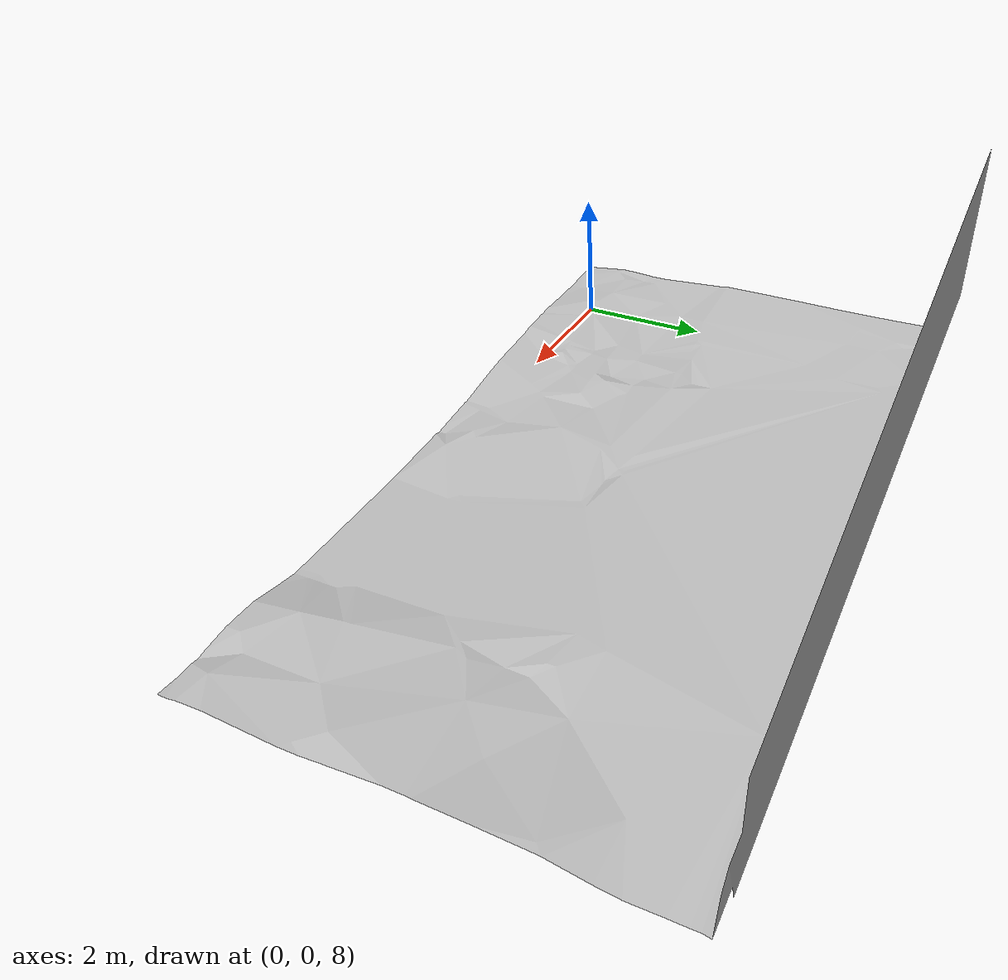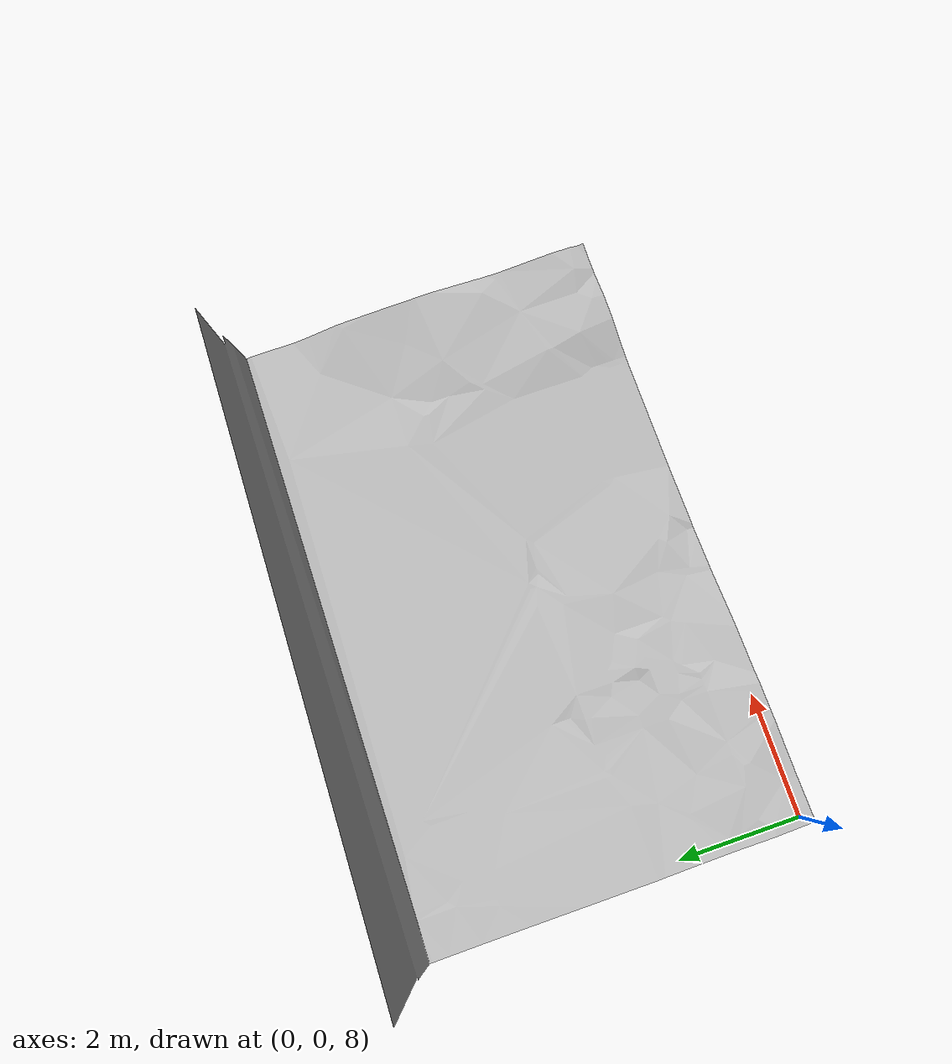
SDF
<?xml version="1.0" ?>
<sdf version="1.10">
    <model name="map_270_80">
        <link name="map_270_80_link">
            <visual name="map_270_80_visual">
                <geometry>
                    <mesh>
                        <uri>meshes/visual/map_270_80.obj</uri>
                    </mesh>
                </geometry>
            </visual>
            <collision name="map_270_80_collision">
                <surface>
                    <friction>
                        <ode>
                            <mu>2.316343837943928</mu>
                            <mu2>2.316343837943928</mu2>
                        </ode>
                        <bullet>
                            <friction>2.316343837943928</friction>
                            <friction2>2.316343837943928</friction2>
                        </bullet>
                    </friction>
                </surface>
                <geometry>
                    <mesh>
                        <uri>meshes/visual/map_270_80.obj</uri>
                    </mesh>
                </geometry>
            </collision>
        </link>
        <static>True</static>
    </model>
</sdf>
